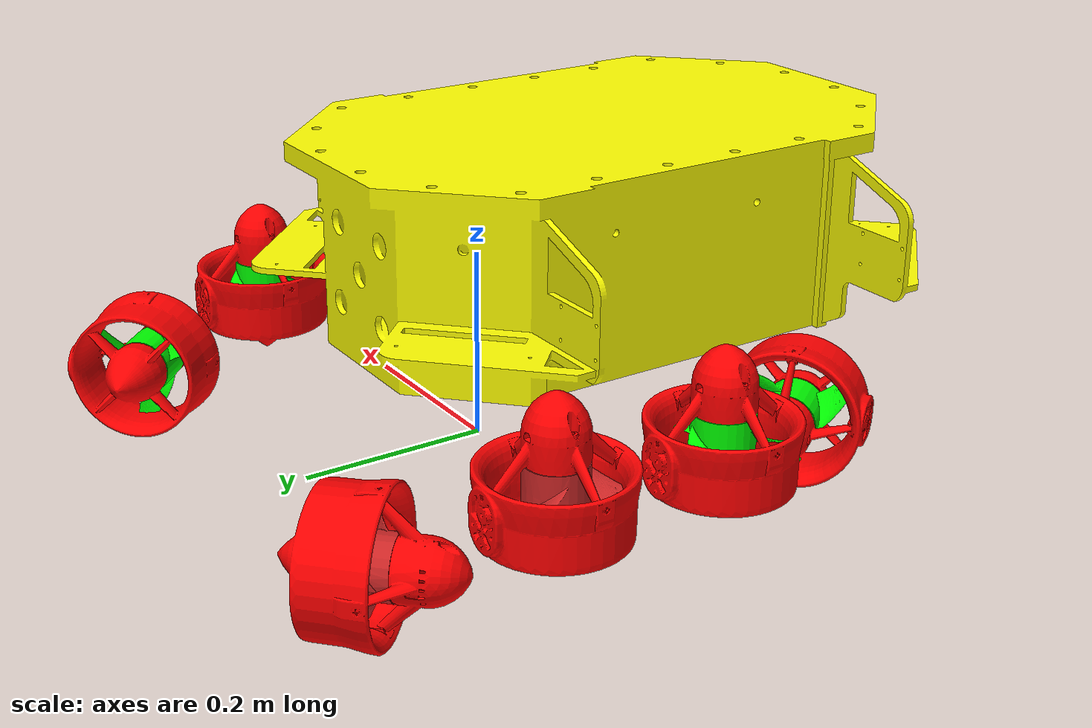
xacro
<?xml version="1.0"?>
<robot xmlns:xacro="http://www.ros.org/wiki/xacro" name="auv">

    <xacro:include filename="$(find my_robot_urdf)/model/camera.urdf.xacro"/>
    <xacro:include filename="$(find my_robot_urdf)/model/imu.urdf.xacro"/>
    <xacro:include filename="$(find my_robot_urdf)/model/thrusters.urdf.xacro"/>

    <material name="red">
        <color rgba="1 0 0 1"/>
    </material>

    <material name="blue">
        <color rgba="0 0 0.8 1"/>
    </material>

    <material name="white">
        <color rgba="1 1 1 1"/>
    </material>

     <material name="yellow">
        <color rgba="1 1 0 1"/>
    </material>

      <material name="green">
        <color rgba="0 1 0 1"/>
    </material>

    <xacro:property name="x" default="-0.35"/>
    <xacro:property name="y" default="0.35"/>
    <xacro:property name="z" default="0"/>
    <xacro:property name="r" default="1.57"/>
    <xacro:property name="p" default="0"/>
    <xacro:property name="Y" default="0"/>

    <link name="base_link">
        <visual>
          <geometry>
              <mesh filename="package://my_robot_urdf/meshes/auv-body/auv.STL" scale="0.001 0.001 0.001"/>
          </geometry>
          <origin xyz="${x} ${y} ${z}" rpy="${r} ${p} ${Y}" />
          <material name="yellow"/>
      </visual>

      <collision>
        <geometry>
          <mesh filename="package://my_robot_urdf/meshes/auv-body/auv.STL" scale="0.001 0.001 0.001"/>
        </geometry>
      </collision>

      <inertial>
        <mass value="160"/>
        <inertia ixx="466338.03533197" ixy="0.00022747" ixz="-0.00184206" iyy="846140.53520644" iyz="-13851.49143136" izz="547835.76597596"/>
      </inertial>

    </link>

    <gazebo reference="base_link">
        <material>Gazebo/Yellow</material>
    </gazebo>

    <!--
// 1:right upper
// 2:left upper
// 3:left lower
// 4:right lower-->

    <xacro:thruster_CW id="1" parent="base_link" xyz="${x-x-0.32} ${y-y-0.06} ${z+0.1}" rpy="0 0 0" axis="0 0 1">
    </xacro:thruster_CW>

    <xacro:thruster_CCW id="2" parent="base_link" xyz="0.26 -0.062 0.1" rpy="0 0 0" axis="0 0 -1">
    </xacro:thruster_CCW>

    <xacro:thruster_CW id="3" parent="base_link" xyz="0.26 0.12 0.1" rpy="0 0 0" axis="0 0 1">
    </xacro:thruster_CW>

    <xacro:thruster_CCW id="4" parent="base_link" xyz="-0.32 0.12 0.1" rpy="0 0 0" axis="0 0 -1" >
    </xacro:thruster_CCW>

    <xacro:thruster_CCW id="5" parent="base_link" xyz="0.22 -0.22 0.06" rpy="0 1.57 0.785" axis="0 0 -1">
    </xacro:thruster_CCW>

    <xacro:thruster_CCW id="6" parent="base_link" xyz="-0.26 0.28 0.06" rpy="0 1.57 3.92" axis="0 0 -1">
    </xacro:thruster_CCW>

    <xacro:thruster_CW id="7" parent="base_link" xyz="0.22 0.28 0.06" rpy="0 1.57 -0.785" axis="0 0 1">
    </xacro:thruster_CW>

    <xacro:thruster_CW id="8" parent="base_link" xyz="-0.23 -0.23 0.06" rpy="0 1.57 2.182" axis="0 0 1">
    </xacro:thruster_CW>

    <gazebo>
      <plugin name="gazebo_ros_control" filename="libgazebo_ros_control.so">
          <robotSimType>gazebo_ros_control/DefaultRobotHWSim</robotSimType>
      </plugin>
    </gazebo>

    <gazebo>
      <plugin name="BuoyancyPlugin" filename="libBuoyancyPlugin.so">
        <fluid_density>1000</fluid_density>
        <link name="base_link">
          <volume>0.00964522875</volume>
        </link>
      </plugin>
    </gazebo>

</robot>

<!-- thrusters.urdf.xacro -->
<robot xmlns:xacro="http://www.ros.org/wiki/xacro" name="thruster">

  <xacro:property name="thrusterCCW_path" value="package://my_robot_urdf/meshes/thrusters/T200_Thruster_CCW/meshes/"/>
  <xacro:property name="thrusterCW_path" value="package://my_robot_urdf/meshes/thrusters/T200_Thruster_CW/meshes/"/>

   <xacro:macro name="thruster_CCW" params="id parent xyz rpy axis">
    <link name="thruster_${id}_link">
       <visual>
        <material name="red"/>
        <geometry>
           <mesh filename="${thrusterCCW_path}T200_Thruster.dae" scale="1.5 1.5 1.5"/>
        </geometry>
      </visual>

      <collision>
        <geometry>
          <mesh filename="${thrusterCCW_path}T200_Thruster.dae" scale="1.5 1.5 1.5"/>
        </geometry>
      </collision>

      <inertial>
        <mass value="3.44"/>
        <inertia ixx="0" ixy="0.0" ixz="0.0" iyy="0" iyz="0.0" izz="0"/>
      </inertial>

    </link>

    <joint name="thruster_${id}_to_body" type="fixed">
      <parent link="${parent}"/>
      <child link="thruster_${id}_link"/>
      <origin rpy="${rpy}" xyz="${xyz}"/>
    </joint>

    <link name='prop_${id}'>
      <inertial>
        <mass value="0.10000000"/>
        <inertia ixx="0.00002540" ixy="0.00000000" ixz="0.00000000" iyy="0.00002541" iyz="-0.00000000" izz="0.00003829"/>
      </inertial>

      <visual>
        <geometry>
          <mesh filename="${thrusterCCW_path}T200_Prop_CCW.dae" scale="1.5 1.5 1.5"/>
        </geometry>
      </visual>

      <collision>
        <geometry>
          <mesh filename="${thrusterCCW_path}T200_Prop_CCW.dae" scale="1.5 1.5 1.5"/>
        </geometry>
      </collision>

    </link>

    <joint name='prop_${id}_to_thruster_${id}_joint' type='continuous'>
      <parent link="thruster_${id}_link"/>
      <child link="prop_${id}"/>
      <axis xyz="${axis}"/>
    </joint>

    <transmission name="thruster_${id}_trainsmission" >
      <type>transmission_interface/SimpleTransmission</type>
        <joint name="prop_${id}_to_thruster_${id}_joint">
          <hardwareInterface>hardware_interface/VelocityJointInterface</hardwareInterface>
        </joint>
      <actuator name="BLDC_motor_${id}">
        <hardwareInterface>hardware_interface/VelocityJointInterface</hardwareInterface>
        <mechanicalReduction>1</mechanicalReduction>
      </actuator>
	  </transmission>

    <gazebo>
      <plugin name='blade_1_${id}' filename='libLiftDragPlugin.so'>
        <a0>0.3</a0>
        <alpha_stall>1.4</alpha_stall>
        <cla>4.2500</cla>
        <cda>0.10</cda>
        <cma>0.00</cma>
        <cla_stall>-0.025</cla_stall>
        <cda_stall>0.0</cda_stall>
        <cma_stall>0.0</cma_stall>
        <area>0.002</area>
        <air_density>1000</air_density>
        <cp>0.084 0 0</cp>
        <forward>0 -1 0</forward>
        <upward>0 0 1</upward>
        <link_name>prop_${id}</link_name>
      </plugin>

      <plugin name='blade_2_${id}' filename='libLiftDragPlugin.so'>
        <a0>0.3</a0>
        <alpha_stall>1.4</alpha_stall>
        <cla>4.2500</cla>
        <cda>0.10</cda>
        <cma>0.00</cma>
        <cla_stall>-0.025</cla_stall>
        <cda_stall>0.0</cda_stall>
        <cma_stall>0.0</cma_stall>
        <area>0.002</area>
        <air_density>1000</air_density>
        <cp>-0.084 0 0</cp>
        <forward>0 1 0</forward>
        <upward>0 0 1</upward>
        <link_name>prop_${id}</link_name>
      </plugin>

    </gazebo>

    <gazebo>
      <static>0</static>
      <allow_auto_disable>0</allow_auto_disable>
    </gazebo>

     <gazebo reference="prop_${id}">
        <material>Gazebo/Red</material>
    </gazebo>

  </xacro:macro>

  <xacro:macro name="thruster_CW" params="id parent xyz rpy axis">
    <link name="thruster_${id}_link">
       <visual>
        <geometry>
           <mesh filename="${thrusterCW_path}T200_Thruster.dae" scale="1.5 1.5 1.5"/>
        </geometry>
        <material name="red"/>
      </visual>

      <collision>
        <geometry>
          <mesh filename="${thrusterCW_path}T200_Thruster.dae" scale="1.5 1.5 1.5"/>
        </geometry>
      </collision>

      <inertial>
        <mass value="3.44"/>
        <inertia ixx="0" ixy="0.0" ixz="0.0" iyy="0" iyz="0.0" izz="0"/>
      </inertial>

    </link>

    <joint name="thruster_${id}_to_body" type="fixed">
      <parent link="${parent}"/>
      <child link="thruster_${id}_link"/>
      <origin rpy="${rpy}" xyz="${xyz}"/>
    </joint>

    <link name='prop_${id}'>
      <inertial>
        <mass value="0.10000000"/>
        <inertia ixx="0.00002540" ixy="0.00000000" ixz="0.00000000" iyy="0.00002541" iyz="-0.00000000" izz="0.00003829"/>
      </inertial>

      <visual>
        <geometry>
          <mesh filename="${thrusterCW_path}T200_Prop_CW.dae" scale="1.5 1.5 1.5"/>
        </geometry>
        <material name="green"/>
      </visual>

      <collision>
        <geometry>
          <mesh filename="${thrusterCW_path}T200_Prop_CW.dae" scale="1.5 1.5 1.5"/>
        </geometry>
      </collision>

    </link>

    <joint name='prop_${id}_to_thruster_${id}_joint' type='continuous'>
      <parent link="thruster_${id}_link"/>
      <child link="prop_${id}"/>
      <axis xyz="${axis}"/>
    </joint>

    <transmission name="thruster_${id}_trainsmission" >
      <type>transmission_interface/SimpleTransmission</type>
        <joint name="prop_${id}_to_thruster_${id}_joint">
          <hardwareInterface>hardware_interface/VelocityJointInterface</hardwareInterface>
        </joint>
      <actuator name="BLDC_motor_${id}">
        <hardwareInterface>hardware_interface/VelocityJointInterface</hardwareInterface>
        <mechanicalReduction>1</mechanicalReduction>
      </actuator>
	  </transmission>

    <gazebo>
      <plugin name='blade_1_${id}' filename='libLiftDragPlugin.so'>
        <a0>0.3</a0>
        <alpha_stall>1.4</alpha_stall>
        <cla>4.2500</cla>
        <cda>0.10</cda>
        <cma>0.00</cma>
        <cla_stall>-0.025</cla_stall>
        <cda_stall>0.0</cda_stall>
        <cma_stall>0.0</cma_stall>
        <area>0.002</area>
        <air_density>1000</air_density>
        <cp>0.084 0 0</cp>
        <forward>0 1 0</forward>
        <upward>0 0 1</upward>
        <link_name>prop_${id}</link_name>
      </plugin>

      <plugin name='blade_2_${id}' filename='libLiftDragPlugin.so'>
        <a0>0.3</a0>
        <alpha_stall>1.4</alpha_stall>
        <cla>4.2500</cla>
        <cda>0.10</cda>
        <cma>0.00</cma>
        <cla_stall>-0.025</cla_stall>
        <cda_stall>0.0</cda_stall>
        <cma_stall>0.0</cma_stall>
        <area>0.002</area>
        <air_density>1000</air_density>
        <cp>-0.084 0 0</cp>
        <forward>0 -1 0</forward>
        <upward>0 0 1</upward>
        <link_name>prop_${id}</link_name>
      </plugin>
    </gazebo>

    <gazebo>
      <static>0</static>
      <allow_auto_disable>0</allow_auto_disable>
    </gazebo>

     <gazebo reference="prop_${id}">
        <material>Gazebo/Green</material>
    </gazebo>

  </xacro:macro>

</robot>
